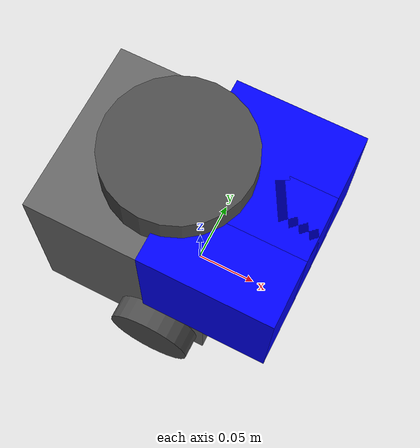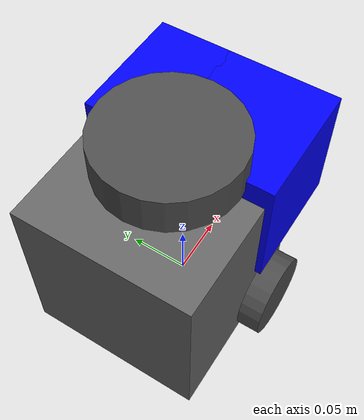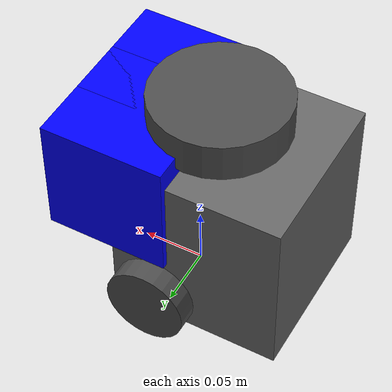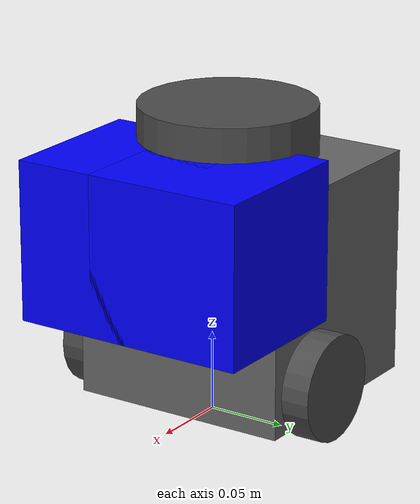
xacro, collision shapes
<?xml version="1.0"?>
<robot name="simple_rover" xmlns:xacro="http://ros.org/wiki/xacro">
  <!-- 색상 매크로 정의 -->
  <xacro:include filename="camera.urdf.xacro"/>
  <xacro:property name="black" value="0.0 0.0 0.0 1.0"/>
  <xacro:property name="dark" value="0.3 0.3 0.3 1.0"/>
  <xacro:property name="light_black" value="0.4 0.4 0.4 1.0"/>

  <!-- 링크 정의 -->
  <link name="base_footprint"/>

  <joint name="base_joint" type="fixed">
    <parent link="base_footprint"/>
    <child link="base_link"/>
    <origin xyz="0.0 0.0 0.010" rpy="0 0 0"/>
  </joint>

  <link name="base_link">
    <visual>
      <origin xyz="-0.032 0 0.0" rpy="0 0 0"/>
      <geometry>
        <mesh filename="/home/kimtaemin/gazebo/ros2_ws/src/SAFETRACKER/urdf/meshes/bases/burger_base.stl" scale="0.001 0.001 0.001"/>
      </geometry>
      <material name="light_black">
        <color rgba="${light_black}"/>
      </material>
    </visual>
    <collision>
      <origin xyz="-0.032 0 0.070" rpy="0 0 0"/>
      <geometry>
        <box size="0.140 0.140 0.143"/>
      </geometry>
    </collision>
    <inertial>
      <origin xyz="0 0 0" rpy="0 0 0"/>
      <mass value="8.2573504e-01"/>
      <inertia ixx="2.2124416e-03" ixy="-1.2294101e-05" ixz="3.4938785e-05" iyy="2.1193702e-03" iyz="-5.0120904e-06" izz="2.0064271e-03"/>
    </inertial>
  </link>

  <joint name="wheel_left_joint" type="continuous">
    <parent link="base_link"/>
    <child link="wheel_left_link"/>
    <origin xyz="0.0 0.08 0.023" rpy="-1.57 0 0"/>
    <axis xyz="0 0 1"/>
  </joint>

  <link name="wheel_left_link">
    <visual>
      <origin xyz="0 0 0" rpy="1.57 0 0"/>
      <geometry>
        <mesh filename="/home/kimtaemin/gazebo/ros2_ws/src/SAFETRACKER/urdf/meshes/wheels/left_tire.stl" scale="0.001 0.001 0.001"/>
      </geometry>
      <material name="dark">
        <color rgba="${dark}"/>
      </material>
    </visual>
    <collision>
      <origin xyz="0 0 0" rpy="0 0 0"/>
      <geometry>
        <cylinder length="0.018" radius="0.033"/>
      </geometry>
    </collision>
    <inertial>
      <origin xyz="0 0 0"/>
      <mass value="2.8498940e-02"/>
      <inertia ixx="1.1175580e-05" ixy="-4.2369783e-11" ixz="-5.9381719e-09" iyy="1.1192413e-05" iyz="-1.4400107e-11" izz="2.0712558e-05"/>
    </inertial>
  </link>

  <joint name="wheel_right_joint" type="continuous">
    <parent link="base_link"/>
    <child link="wheel_right_link"/>
    <origin xyz="0.0 -0.080 0.023" rpy="-1.57 0 0"/>
    <axis xyz="0 0 1"/>
  </joint>

  <link name="wheel_right_link">
    <visual>
      <origin xyz="0 0 0" rpy="1.57 0 0"/>
      <geometry>
        <mesh filename="/home/kimtaemin/gazebo/ros2_ws/src/SAFETRACKER/urdf/meshes/wheels/right_tire.stl" scale="0.001 0.001 0.001"/>
      </geometry>
      <material name="dark">
        <color rgba="${dark}"/>
      </material>
    </visual>
    <collision>
      <origin xyz="0 0 0" rpy="0 0 0"/>
      <geometry>
        <cylinder length="0.018" radius="0.033"/>
      </geometry>
    </collision>
    <inertial>
      <origin xyz="0 0 0"/>
      <mass value="2.8498940e-02"/>
      <inertia ixx="1.1175580e-05" ixy="-4.2369783e-11" ixz="-5.9381719e-09" iyy="1.1192413e-05" iyz="-1.4400107e-11" izz="2.0712558e-05"/>
    </inertial>
  </link>

  <joint name="caster_back_joint" type="fixed">
    <parent link="base_link"/>
    <child link="caster_back_link"/>
    <origin xyz="-0.081 0 -0.004" rpy="-1.57 0 0"/>
  </joint>

  <link name="caster_back_link">
    <collision>
      <origin xyz="0 0.001 0" rpy="0 0 0"/>
      <geometry>
        <box size="0.030 0.009 0.020"/>
      </geometry>
    </collision>
    <inertial>
      <origin xyz="0 0 0"/>
      <mass value="0.005"/>
      <inertia ixx="0.001" ixy="0.0" ixz="0.0" iyy="0.001" iyz="0.0" izz="0.001"/>
    </inertial>
  </link>

  <joint name="imu_joint" type="fixed">
    <parent link="base_link"/>
    <child link="imu_link"/>
    <origin xyz="-0.032 0 0.068" rpy="0 0 0"/>
  </joint>

  <link name="imu_link"/>

  <joint name="scan_joint" type="fixed">
    <parent link="base_link"/>
    <child link="base_scan"/>
    <origin xyz="-0.032 0 0.172" rpy="0 0 0"/>
  </joint>

  <link name="base_scan">
    <visual>
      <origin xyz="0 0 0.0" rpy="0 0 0"/>
      <geometry>
        <mesh filename="/home/kimtaemin/gazebo/ros2_ws/src/SAFETRACKER/urdf/meshes/sensors/lds.stl" scale="0.001 0.001 0.001"/>
      </geometry>
      <material name="dark">
        <color rgba="${dark}"/>
      </material>
    </visual>
    <collision>
      <origin xyz="0.015 0 -0.0065" rpy="0 0 0"/>
      <geometry>
        <cylinder length="0.0315" radius="0.055"/>
      </geometry>
    </collision>
    <inertial>
      <mass value="0.114"/>
      <origin xyz="0 0 0"/>
      <inertia ixx="0.001" ixy="0.0" ixz="0.0" iyy="0.001" iyz="0.0" izz="0.001"/>
    </inertial>
  </link>

  <link name="camera_link_1">
    <visual>
      <geometry>
        <box size="0.01 0.01 0.01"/>
      </geometry>
      <material name="blue">
        <color rgba="0 0 1"/>
      </material>
    </visual>
    <collision>
      <geometry>
        <box size="0.1 0.1 0.1"/>
      </geometry>
    </collision>

    <inertial>
      <mass value="0.01"/>
      <inertia ixx="0.0001" iyy="0.0001" izz="0.0001" ixy="0" ixz="0" iyz="0"/>
    </inertial>
  </link>
  <joint name="joint_camera_1" type="continuous">
    <parent link="base_link"/>
    <child link="camera_link_1"/>
    <origin xyz="0.04 -0.025 0.11" rpy="0 0 0"/>
  </joint>
  <xacro:normal_camera robot_name="rover" camera_link="camera_link_1"/>

  <link name="camera_link_2">
    <visual>
      <geometry>
        <box size="0.01 0.01 0.01"/>
      </geometry>
      <material name="blue">
        <color rgba="0 0 1"/>
      </material>
    </visual>
    <collision>
      <geometry>
        <box size="0.1 0.1 0.1"/>
      </geometry>
    </collision>

    <inertial>
      <mass value="0.01"/>
      <inertia ixx="0.0001" iyy="0.0001" izz="0.0001" ixy="0" ixz="0" iyz="0"/>
    </inertial>
  </link>
  <joint name="joint_camera_2" type="continuous">
    <parent link="base_link"/>
    <child link="camera_link_2"/>
    <origin xyz="0.04 0.025 0.11" rpy="0 0 0"/>
  </joint>
  <xacro:normal_camera robot_name="rover" camera_link="camera_link_2"/>

  <!-- Gazebo 설정 -->
  <gazebo reference="base_link">
    <material>Gazebo/LightGrey</material>
  </gazebo>
  <gazebo reference="wheel_left_link">
    <material>Gazebo/DarkGrey</material>
  </gazebo>
  <gazebo reference="wheel_right_link">
    <material>Gazebo/DarkGrey</material>
  </gazebo>
  <gazebo reference="base_scan">
    <material>Gazebo/DarkGrey</material>
  </gazebo>
  <gazebo reference="caster_back_link">
    <material>Gazebo/Grey</material>
  </gazebo>
  <gazebo reference="imu_link">
    <material>Gazebo/Grey</material>
  </gazebo>
    <gazebo reference="camera_link_1">
    <material>Gazebo/Blue</material>
    <mu1>0.84</mu1>
    <mu2>0.84</mu2>
  </gazebo>
    <gazebo reference="camera_link_2">
    <material>Gazebo/Blue</material>
    <mu1>0.84</mu1>
    <mu2>0.84</mu2>
  </gazebo>

  <gazebo>
    <plugin name="camera_controller_1" filename="libgazebo_ros_camera.so">
      <ros>
        <namespace>rover</namespace>
      </ros>
      <frame_name>camera_link_1</frame_name>
      <min_depth>0.1</min_depth>
      <max_depth>100.0</max_depth>
      <imageTopicName>camera_1/image_raw</imageTopicName>
      <cameraInfoTopicName>camera_1/camera_info</cameraInfoTopicName>
    </plugin>
  </gazebo>

  <gazebo>
    <plugin name="camera_controller_2" filename="libgazebo_ros_camera.so">
      <ros>
        <namespace>rover</namespace>
      </ros>
      <frame_name>camera_link_2</frame_name>
      <min_depth>0.1</min_depth>
      <max_depth>100.0</max_depth>
      <imageTopicName>camera_2/image_raw</imageTopicName>
      <cameraInfoTopicName>camera_2/camera_info</cameraInfoTopicName>
    </plugin>
  </gazebo>

  <gazebo>
    <plugin name="diff_drive" filename="libgazebo_ros_diff_drive.so">
      <left_joint>wheel_left_joint</left_joint>
      <right_joint>wheel_right_joint</right_joint>
      <wheel_separation>0.160</wheel_separation>
      <wheel_diameter>0.066</wheel_diameter>
      <command_topic>cmd_vel</command_topic>
      <odometry_topic>odom</odometry_topic>
      <robot_base_frame>base_footprint</robot_base_frame>
    </plugin>
  </gazebo>

  <gazebo reference="base_scan">
    <sensor type="ray" name="lds_lfcd_sensor">
      <pose>0 0 0 0 0 0</pose>
      <visualize>false</visualize>
      <update_rate>1800</update_rate>
      <ray>
        <scan>
          <horizontal>
            <samples>360</samples>
            <resolution>1</resolution>
            <min_angle>0.0</min_angle>
            <max_angle>6.28</max_angle>
          </horizontal>
        </scan>
        <range>
          <min>0.120</min>
          <max>3.5</max>
          <resolution>0.015</resolution>
        </range>
      </ray>
      <plugin name="gazebo_ros_lds_lfcd_controller" filename="libgazebo_ros_laser.so">
        <topicName>/scan</topicName>
        <frameName>base_scan</frameName>
      </plugin>
    </sensor>
  </gazebo>

  <gazebo reference="imu_link">
    <sensor type="imu" name="imu">
      <plugin name="imu_plugin" filename="libgazebo_ros_imu.so">
        <topicName>/imu</topicName>
        <frameName>imu_link</frameName>
      </plugin>
    </sensor>
  </gazebo>
</robot>
